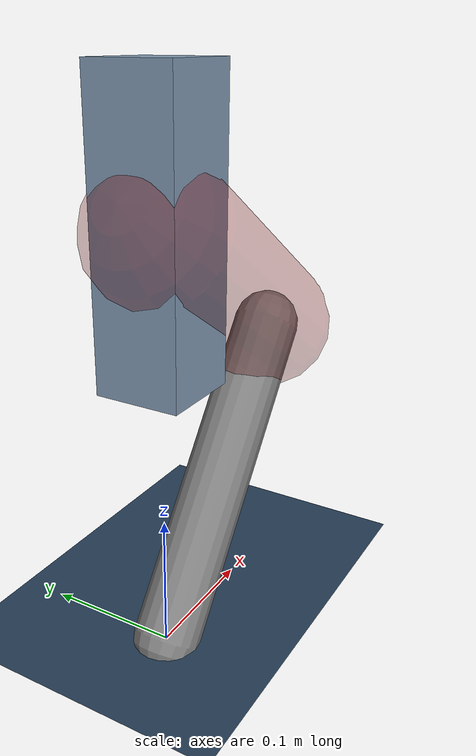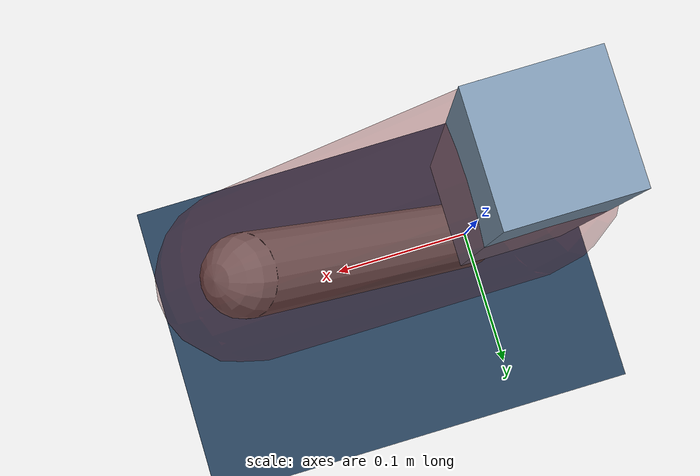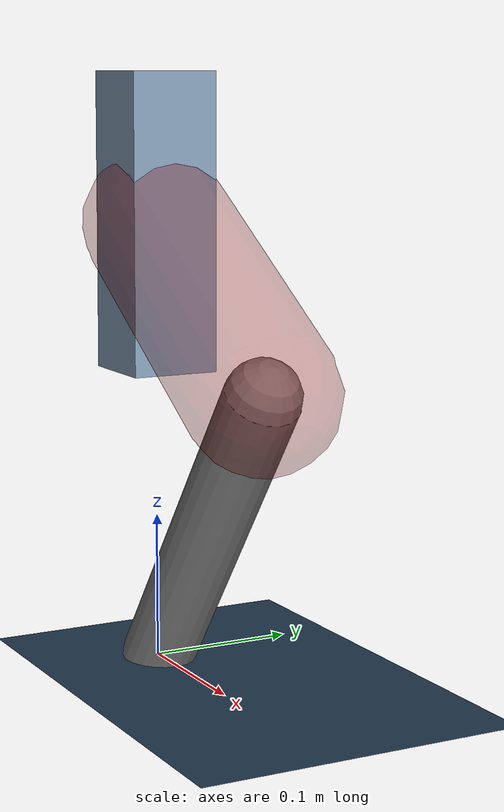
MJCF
<mujoco model="Hopper2D">
	<compiler inertiafromgeom="true" angle="radian" />
	<option timestep="0.001" integrator="implicit" cone="elliptic" solver="Newton" tolerance="1e-10" />

	<default>
		<geom contype="1" conaffinity="1" condim="3" friction="2 0.005 0.0001" solref="0.005 1" />
		<joint limited="true" damping="0.1" />
	</default>

	<asset>
		<texture name="skybox" type="skybox" builtin="gradient" rgb1=".4 .6 .8" rgb2="0 0 0" width="800" height="800" />
		<texture name="grid" type="2d" builtin="checker" rgb1=".1 .2 .3" rgb2=".2 .3 .4" width="300" height="300" mark="edge" markrgb=".2 .3 .4" />
		<material name="ground" texture="grid" texrepeat="1 1" texuniform="true" reflectance="0.1" />
		<material name="leg" rgba="0.5 0.6 0.7 1" />
	</asset>

	<worldbody>

		<geom name="floor" type="plane" size="5 5 0.25" material="ground" />

		<light directional="false" diffuse="0.8 0.8 0.8" specular="0.3 0.3 0.3" pos="0 0 2" dir="0 0 -1" />
		<light mode="targetbodycom" target="base" directional="false" diffuse="0.8 0.8 0.8" specular="0.3 0.3 0.3" pos="0 0 2" dir="0 0 -1" />

		<camera name="fixed" pos="0 -2 1" xyaxes="1 0 0 0 0 1" />
		<camera name="tracking" mode="trackcom" pos="0 -3 1" />

		<body name="root" pos="0 0 0.30204117113160966">
			<joint name="slide_x" type="slide" axis="1 0 0" range="-100 100" />
			<joint name="slide_z" type="slide" axis="0 0 1" range="0 10" />

			<body name="base" pos="0 0 0">
				<geom name="torso" type="box" size="0.03 0.03 0.1" mass="3.3470000000000004" material="leg" />

				<body name="link1" pos="0 0 0" euler="0 0.5733958180272443 0">
					<joint type="hinge" axis="0 -1 0" pos="0 0 0" name="hinge1" limited="true" range="-3.14 3.14" stiffness="0" damping="0.1" />
					<geom name="thigh" type="capsule" fromto="0 0 0 0.17856721421890817 0 0" size="0.05" rgba="0.5 0 0 0.3" mass="0.6770613141253796" />

					<body name="link2" pos="0.17856721421890817 0 0" euler="0 1.6287195609655647 0">
						<joint type="hinge" axis="0 -1 0" pos="0 0 0" name="hinge2" limited="true" range="-3.14 3.14" stiffness="0" damping="0.1" />
						<geom name="shank" type="capsule" fromto="0 0 0 0.25416005043416673 0 0" size="0.025" mass="0.44592804034733335" />

					</body>
				</body>
			</body>
		</body>
	</worldbody>

	<actuator>
		<motor name="torque1" joint="hinge1" ctrlrange="-146.31574990927783 146.31574990927783" ctrllimited="true" gear="1" />
		<motor name="torque2" joint="hinge2" ctrlrange="-84.01489463689941 84.01489463689941" ctrllimited="true" gear="1" />
	</actuator>
</mujoco>
